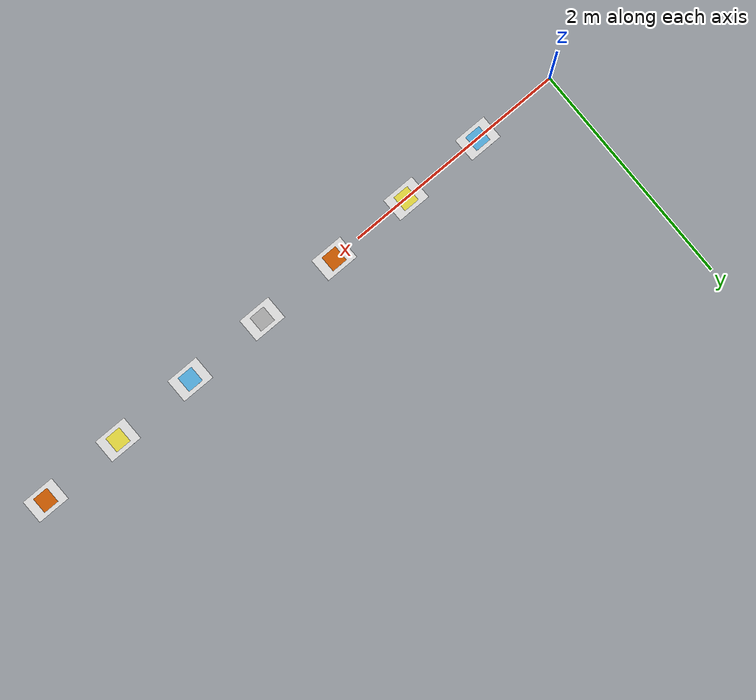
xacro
<robot xmlns:xacro="http://wiki.ros.org/xacro" name="aruco_marker">

    <xacro:arg name="prefix" default="aruco_marker_" />
    <xacro:arg name="grid_size" default="0.75" />
    <xacro:arg name="height" default="0.0" />

    <xacro:property name="grid_size" value="$(arg grid_size)" />
    <xacro:property name="height" value="$(arg height)" />

    <xacro:include filename="$(find magni_gazebo)/urdf/fiducials/aruco_marker.xacro"/>

    <link name="world"/>

    <xacro:aruco_marker prefix="$(arg prefix)" marker_id="0" parent="world">
        <origin xyz="${1*grid_size} 0 ${height}" rpy="0 0 0"/>
    </xacro:aruco_marker>

    <xacro:aruco_marker prefix="$(arg prefix)" marker_id="1" parent="world">
        <origin xyz="${2*grid_size} 0 ${height}" rpy="0 0 0"/>
    </xacro:aruco_marker>

    <xacro:aruco_marker prefix="$(arg prefix)" marker_id="2" parent="world">
        <origin xyz="${3*grid_size} 0 ${height}" rpy="0 0 0"/>
    </xacro:aruco_marker>

    <xacro:aruco_marker prefix="$(arg prefix)" marker_id="3" parent="world">
        <origin xyz="${4*grid_size} 0 ${height}" rpy="0 0 0"/>
    </xacro:aruco_marker>

    <xacro:aruco_marker prefix="$(arg prefix)" marker_id="4" parent="world">
        <origin xyz="${5*grid_size} 0 ${height}" rpy="0 0 0"/>
    </xacro:aruco_marker>

    <xacro:aruco_marker prefix="$(arg prefix)" marker_id="5" parent="world">
        <origin xyz="${6*grid_size} 0 ${height}" rpy="0 0 0"/>
    </xacro:aruco_marker>

    <xacro:aruco_marker prefix="$(arg prefix)" marker_id="6" parent="world">
        <origin xyz="${7*grid_size} 0 ${height}" rpy="0 0 0"/>
    </xacro:aruco_marker>

</robot>

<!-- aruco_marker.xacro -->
<robot xmlns:xacro="http://wiki.ros.org/xacro" name="aruco_marker">

    <xacro:macro name="aruco_marker" params="prefix marker_id parent='' *origin">

        <xacro:if value="${parent != ''}">
            <joint name="${prefix}${marker_id}_joint" type="fixed">
                <parent link="world"/>
                <child link="${prefix}${marker_id}base_link"/>
                <xacro:insert_block name="origin"/>
            </joint>
        </xacro:if>

        <link name="${prefix}${marker_id}base_link">
            <inertial>
                <mass value="0.01"/>
                <inertia ixx="0.0" ixy="0.0" ixz="0.0" iyy="0.0" iyz="0.0" izz="0.0"/>
            </inertial>
            <visual>
                <geometry>
                    <box size="0.14 0.14 0.003"/>
                </geometry>
            </visual>
        </link>

        <gazebo reference="${prefix}${marker_id}base_link">
            <material>ArucoVisualMarker${marker_id}/Marker</material>
            <turnGravityOff>true</turnGravityOff>
        </gazebo>

        <joint name="${prefix}${marker_id}paper_joint" type="fixed">
            <parent link="${prefix}${marker_id}base_link"/>
            <child link="${prefix}${marker_id}paper_link"/>
        </joint>

        <link name="${prefix}${marker_id}paper_link">
            <visual>
                <geometry>
                    <box size="0.297 0.21 0.001"/>
                </geometry>
            </visual>
        </link>

        <gazebo reference="${prefix}${marker_id}paper_link">
            <material>MagniWorld/White</material>
        </gazebo>

    </xacro:macro>

</robot>
